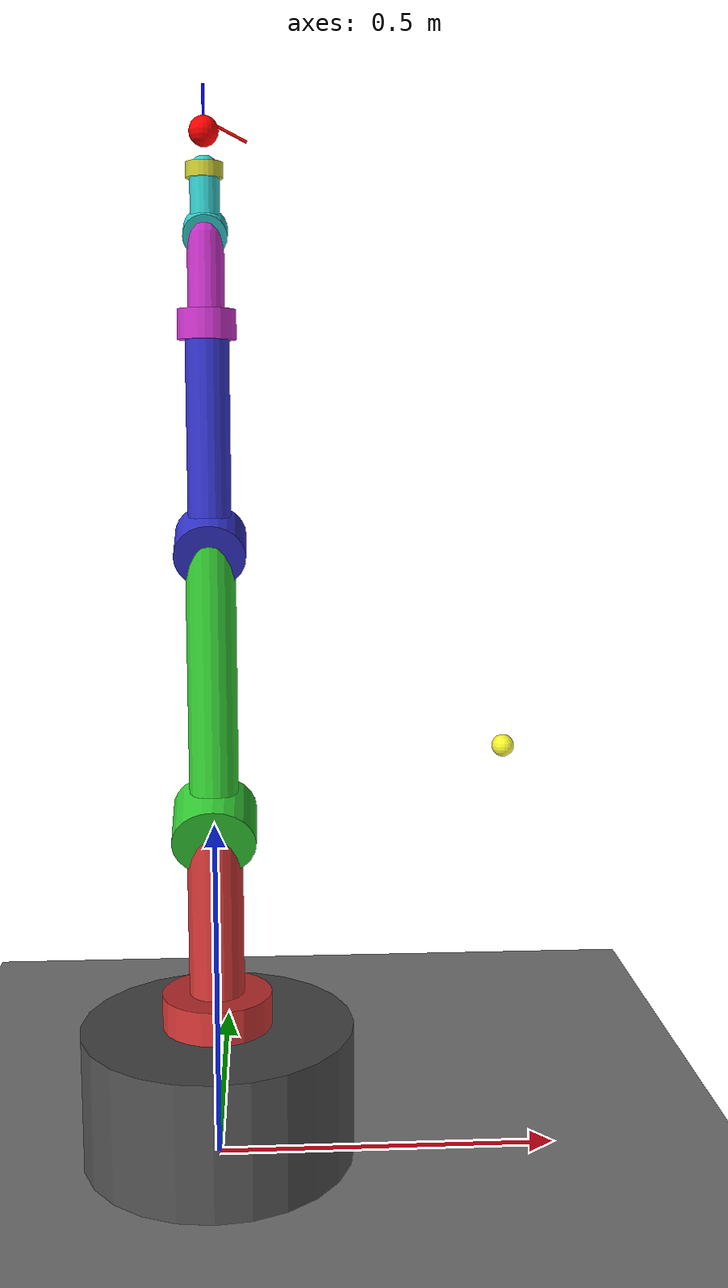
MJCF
<mujoco model="simple_six_axis_arm">
  <compiler angle="radian"/>

  <option timestep="0.001" gravity="0 0 -9.81"/>

  <asset>
    <material name="base" rgba="0.3 0.3 0.3 1"/>
    <material name="link1" rgba="0.8 0.2 0.2 1"/>
    <material name="link2" rgba="0.2 0.8 0.2 1"/>
    <material name="link3" rgba="0.2 0.2 0.8 1"/>
    <material name="link4" rgba="0.8 0.2 0.8 1"/>
    <material name="link5" rgba="0.2 0.8 0.8 1"/>
    <material name="link6" rgba="0.8 0.8 0.2 1"/>
  </asset>

  <worldbody>
    <light directional="true" pos="0 0 3"/>
    <geom type="plane" size="2 2 0.1" rgba="0.5 0.5 0.5 1"/>

    <!-- 基座 -->
    <body name="base" pos="0 0 0.1">
      <geom type="cylinder" size="0.2 0.1" material="base"/>

      <!-- 关节1 -->
      <body name="link1" pos="0 0 0.1">
        <joint name="joint1" type="hinge" axis="0 0 1" range="-3.1416 3.1416" damping="0.5"/>
        <geom type="cylinder" size="0.08 0.05" material="link1"/>
        <geom type="capsule" size="0.04" fromto="0 0 0.05 0 0 0.3" material="link1"/>

        <!-- 关节2 -->
        <body name="link2" pos="0 0 0.3">
          <joint name="joint2" type="hinge" axis="0 1 0" range="-3.1416 3.1416" damping="0.5"/>
          <geom type="cylinder" size="0.06 0.04" material="link2" euler="90 0 0"/>
          <geom type="capsule" size="0.035" fromto="0 0 0 0 0 0.4" material="link2"/>

          <!-- 关节3 -->
          <body name="link3" pos="0 0 0.4">
            <joint name="joint3" type="hinge" axis="0 1 0" range="-3.1416 3.1416" damping="0.5"/>
            <geom type="cylinder" size="0.05 0.03" material="link3" euler="90 0 0"/>
            <geom type="capsule" size="0.03" fromto="0 0 0 0 0 0.3" material="link3"/>

            <!-- 关节4 -->
            <body name="link4" pos="0 0 0.3">
              <joint name="joint4" type="hinge" axis="0 0 1" range="-3.1416 3.1416" damping="0.5"/>
              <geom type="cylinder" size="0.04 0.02" material="link4"/>
              <geom type="capsule" size="0.025" fromto="0 0 0.02 0 0 0.12" material="link4"/>

              <!-- 关节5 -->
              <body name="link5" pos="0 0 0.12">
                <joint name="joint5" type="hinge" axis="0 1 0" range="-3.1416 3.1416" damping="0.5"/>
                <geom type="cylinder" size="0.03 0.015" material="link5" euler="90 0 0"/>
                <geom type="capsule" size="0.02" fromto="0 0 0.015 0 0 0.08" material="link5"/>

                <!-- 关节6 -->
                <body name="link6" pos="0 0 0.08">
                  <joint name="joint6" type="hinge" axis="0 0 1" range="-3.1416 3.1416" damping="0.5"/>
                  <geom type="cylinder" size="0.025 0.01" material="link6"/>

                  <!-- 末端执行器 -->
                  <body name="end_effector" pos="0 0 0.05">
                    <geom type="sphere" size="0.02" rgba="1 0 0 1"/>
                    <!-- 坐标轴 -->
                    <geom type="cylinder" size="0.002 0.03" rgba="1 0 0 1" pos="0.03 0 0" euler="0 90 0"/>
                    <geom type="cylinder" size="0.002 0.03" rgba="0 1 0 1" pos="0 0.03 0" euler="90 0 0"/>
                    <geom type="cylinder" size="0.002 0.03" rgba="0 0 1 1" pos="0 0 0.03"/>
                  </body>
                </body>
              </body>
            </body>
          </body>
        </body>
      </body>
    </body>

    <!-- 目标点 -->
    <body name="target" pos="0.5 0.5 0.5">
      <geom type="sphere" size="0.02" rgba="1 1 0 0.8" contype="0" conaffinity="0"/>
    </body>
  </worldbody>

  <actuator>
    <position joint="joint1" ctrlrange="-3.1416 3.1416" kp="100"/>
    <position joint="joint2" ctrlrange="-3.1416 3.1416" kp="150"/>
    <position joint="joint3" ctrlrange="-3.1416 3.1416" kp="80"/>
    <position joint="joint4" ctrlrange="-3.1416 3.1416" kp="80"/>
    <position joint="joint5" ctrlrange="-3.1416 3.1416" kp="80"/>
    <position joint="joint6" ctrlrange="-3.1416 3.1416" kp="80"/>
  </actuator>

  <keyframe>
    <key name="home" qpos="0 -0.785 0.785 0 0 0"/>
  </keyframe>

</mujoco>
